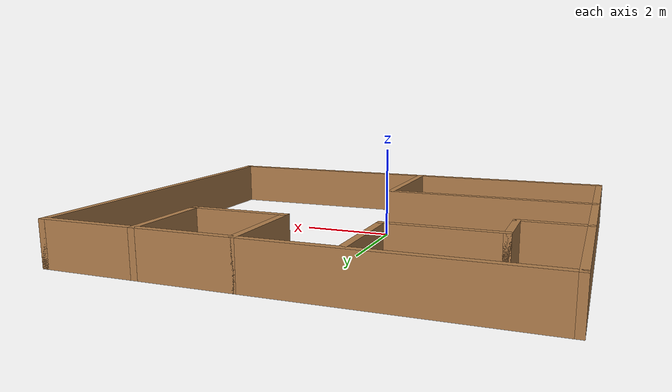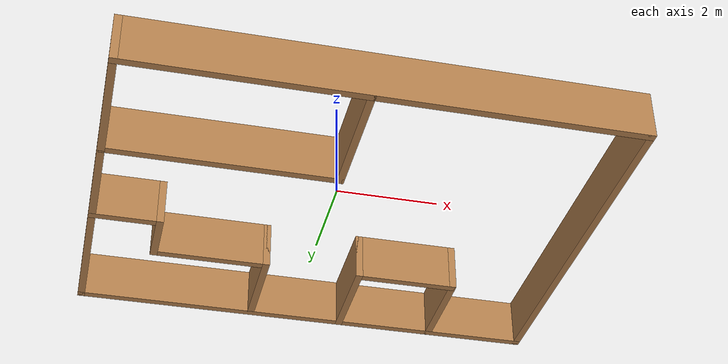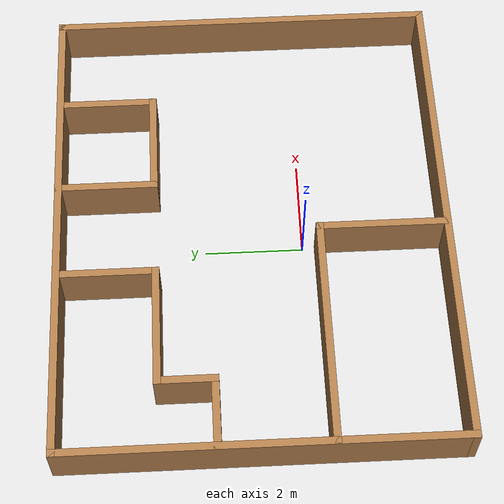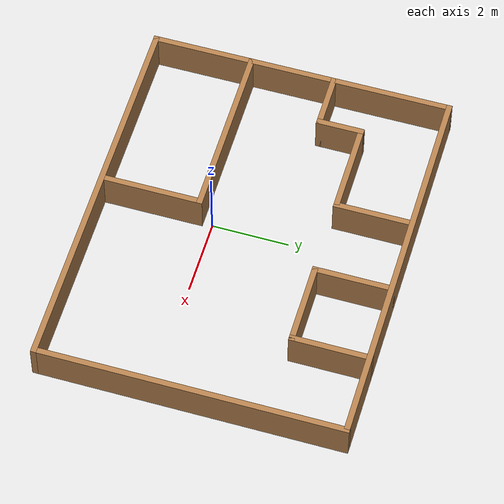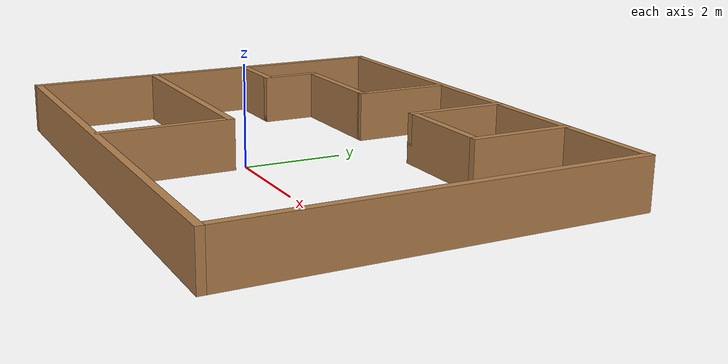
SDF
<?xml version='1.0'?>
<sdf version='1.6'>
  <model name='office3'>
    <pose frame=''>0.363 1.03103 0 0 -0 0</pose>
    <link name='Wall_10'>
      <collision name='Wall_10_Collision'>
        <geometry>
          <box>
            <size>10 0.15 1</size>
          </box>
        </geometry>
        <pose frame=''>0 0 0.5 0 -0 0</pose>
      </collision>
      <visual name='Wall_10_Visual'>
        <pose frame=''>0 0 0.5 0 -0 0</pose>
        <geometry>
          <box>
            <size>10 0.15 1</size>
          </box>
        </geometry>
        <material>
          <script>
            <uri>file://media/materials/scripts/gazebo.material</uri>
            <name>Gazebo/Wood</name>
          </script>
          <ambient>1 1 1 1</ambient>
        </material>
        <meta>
          <layer>0</layer>
        </meta>
      </visual>
      <pose frame=''>-0 -3.92503 0 0 -0 3.14159</pose>
    </link>
    <link name='Wall_11'>
      <collision name='Wall_11_Collision'>
        <geometry>
          <box>
            <size>8 0.15 1</size>
          </box>
        </geometry>
        <pose frame=''>0 0 0.5 0 -0 0</pose>
      </collision>
      <visual name='Wall_11_Visual'>
        <pose frame=''>0 0 0.5 0 -0 0</pose>
        <geometry>
          <box>
            <size>8 0.15 1</size>
          </box>
        </geometry>
        <material>
          <script>
            <uri>file://media/materials/scripts/gazebo.material</uri>
            <name>Gazebo/Wood</name>
          </script>
          <ambient>1 1 1 1</ambient>
        </material>
        <meta>
          <layer>0</layer>
        </meta>
      </visual>
      <pose frame=''>-4.925 -2.9e-05 0 0 -0 1.5708</pose>
    </link>
    <link name='Wall_13'>
      <collision name='Wall_13_Collision'>
        <geometry>
          <box>
            <size>1.5 0.15 1</size>
          </box>
        </geometry>
        <pose frame=''>0 0 0.5 0 -0 0</pose>
      </collision>
      <visual name='Wall_13_Visual'>
        <pose frame=''>0 0 0.5 0 -0 0</pose>
        <geometry>
          <box>
            <size>1.5 0.15 1</size>
          </box>
        </geometry>
        <material>
          <script>
            <uri>file://media/materials/scripts/gazebo.material</uri>
            <name>Gazebo/Wood</name>
          </script>
          <ambient>1 1 1 1</ambient>
        </material>
        <meta>
          <layer>0</layer>
        </meta>
      </visual>
      <pose frame=''>-4.25 0.863971 0 0 -0 0</pose>
    </link>
    <link name='Wall_14'>
      <collision name='Wall_14_Collision'>
        <geometry>
          <box>
            <size>1.25 0.15 1</size>
          </box>
        </geometry>
        <pose frame=''>0 0 0.5 0 -0 0</pose>
      </collision>
      <visual name='Wall_14_Visual'>
        <pose frame=''>0 0 0.5 0 -0 0</pose>
        <geometry>
          <box>
            <size>1.25 0.15 1</size>
          </box>
        </geometry>
        <material>
          <script>
            <uri>file://media/materials/scripts/gazebo.material</uri>
            <name>Gazebo/Wood</name>
          </script>
          <ambient>1 1 1 1</ambient>
        </material>
        <meta>
          <layer>0</layer>
        </meta>
      </visual>
      <pose frame=''>-3.575 1.41397 0 0 -0 1.5708</pose>
    </link>
    <link name='Wall_15'>
      <collision name='Wall_15_Collision'>
        <geometry>
          <box>
            <size>2.5 0.15 1</size>
          </box>
        </geometry>
        <pose frame=''>0 0 0.5 0 -0 0</pose>
      </collision>
      <visual name='Wall_15_Visual'>
        <pose frame=''>0 0 0.5 0 -0 0</pose>
        <geometry>
          <box>
            <size>2.5 0.15 1</size>
          </box>
        </geometry>
        <material>
          <script>
            <uri>file://media/materials/scripts/gazebo.material</uri>
            <name>Gazebo/Wood</name>
          </script>
          <ambient>1 1 1 1</ambient>
        </material>
        <meta>
          <layer>0</layer>
        </meta>
      </visual>
      <pose frame=''>-2.4 1.96397 0 0 -0 0</pose>
    </link>
    <link name='Wall_16'>
      <collision name='Wall_16_Collision'>
        <geometry>
          <box>
            <size>2 0.15 1</size>
          </box>
        </geometry>
        <pose frame=''>0 0 0.5 0 -0 0</pose>
      </collision>
      <visual name='Wall_16_Visual'>
        <pose frame=''>0 0 0.5 0 -0 0</pose>
        <geometry>
          <box>
            <size>2 0.15 1</size>
          </box>
        </geometry>
        <material>
          <script>
            <uri>file://media/materials/scripts/gazebo.material</uri>
            <name>Gazebo/Wood</name>
          </script>
          <ambient>1 1 1 1</ambient>
        </material>
        <meta>
          <layer>0</layer>
        </meta>
      </visual>
      <pose frame=''>-1.225 2.88897 0 0 -0 1.5708</pose>
    </link>
    <link name='Wall_18'>
      <collision name='Wall_18_Collision'>
        <geometry>
          <box>
            <size>2.106 0.15 1</size>
          </box>
        </geometry>
        <pose frame=''>0 0 0.5 0 -0 0</pose>
      </collision>
      <visual name='Wall_18_Visual'>
        <pose frame=''>0 0 0.5 0 -0 0</pose>
        <geometry>
          <box>
            <size>2.106 0.15 1</size>
          </box>
        </geometry>
        <material>
          <script>
            <uri>file://media/materials/scripts/gazebo.material</uri>
            <name>Gazebo/Wood</name>
          </script>
          <ambient>1 1 1 1</ambient>
        </material>
        <meta>
          <layer>0</layer>
        </meta>
      </visual>
      <pose frame=''>0.777 2.94697 0 0 -0 -1.5708</pose>
    </link>
    <link name='Wall_19'>
      <collision name='Wall_19_Collision'>
        <geometry>
          <box>
            <size>2.21 0.15 1</size>
          </box>
        </geometry>
        <pose frame=''>0 0 0.5 0 -0 0</pose>
      </collision>
      <visual name='Wall_19_Visual'>
        <pose frame=''>0 0 0.5 0 -0 0</pose>
        <geometry>
          <box>
            <size>2.21 0.15 1</size>
          </box>
        </geometry>
        <material>
          <script>
            <uri>file://media/materials/scripts/gazebo.material</uri>
            <name>Gazebo/Wood</name>
          </script>
          <ambient>1 1 1 1</ambient>
        </material>
        <meta>
          <layer>0</layer>
        </meta>
      </visual>
      <pose frame=''>1.807 1.96897 0 0 -0 0</pose>
    </link>
    <link name='Wall_20'>
      <collision name='Wall_20_Collision'>
        <geometry>
          <box>
            <size>2.10612 0.15 1</size>
          </box>
        </geometry>
        <pose frame=''>0 0 0.5 0 -0 0</pose>
      </collision>
      <visual name='Wall_20_Visual'>
        <pose frame=''>0 0 0.5 0 -0 0</pose>
        <geometry>
          <box>
            <size>2.10612 0.15 1</size>
          </box>
        </geometry>
        <material>
          <script>
            <uri>file://media/materials/scripts/gazebo.material</uri>
            <name>Gazebo/Wood</name>
          </script>
          <ambient>1 1 1 1</ambient>
        </material>
        <meta>
          <layer>0</layer>
        </meta>
      </visual>
      <pose frame=''>2.837 2.94697 0 0 -0 1.5708</pose>
    </link>
    <link name='Wall_22'>
      <collision name='Wall_22_Collision'>
        <geometry>
          <box>
            <size>4.692 0.15 1</size>
          </box>
        </geometry>
        <pose frame=''>0 0 0.5 0 -0 0</pose>
      </collision>
      <visual name='Wall_22_Visual'>
        <pose frame=''>0 0 0.5 0 -0 0</pose>
        <geometry>
          <box>
            <size>4.692 0.15 1</size>
          </box>
        </geometry>
        <material>
          <script>
            <uri>file://media/materials/scripts/gazebo.material</uri>
            <name>Gazebo/Wood</name>
          </script>
          <ambient>1 1 1 1</ambient>
        </material>
        <meta>
          <layer>0</layer>
        </meta>
      </visual>
      <pose frame=''>-2.634 -1.34503 0 0 -0 0</pose>
    </link>
    <link name='Wall_23'>
      <collision name='Wall_23_Collision'>
        <geometry>
          <box>
            <size>2.72664 0.15 1</size>
          </box>
        </geometry>
        <pose frame=''>0 0 0.5 0 -0 0</pose>
      </collision>
      <visual name='Wall_23_Visual'>
        <pose frame=''>0 0 0.5 0 -0 0</pose>
        <geometry>
          <box>
            <size>2.72664 0.15 1</size>
          </box>
        </geometry>
        <material>
          <script>
            <uri>file://media/materials/scripts/gazebo.material</uri>
            <name>Gazebo/Wood</name>
          </script>
          <ambient>1 1 1 1</ambient>
        </material>
        <meta>
          <layer>0</layer>
        </meta>
      </visual>
      <pose frame=''>-0.363 -2.63353 0 0 -0 -1.5708</pose>
    </link>
    <link name='Wall_8'>
      <collision name='Wall_8_Collision'>
        <geometry>
          <box>
            <size>10 0.15 1</size>
          </box>
        </geometry>
        <pose frame=''>0 0 0.5 0 -0 0</pose>
      </collision>
      <visual name='Wall_8_Visual'>
        <pose frame=''>0 0 0.5 0 -0 0</pose>
        <geometry>
          <box>
            <size>10 0.15 1</size>
          </box>
        </geometry>
        <material>
          <script>
            <uri>file://media/materials/scripts/gazebo.material</uri>
            <name>Gazebo/Wood</name>
          </script>
          <ambient>1 1 1 1</ambient>
        </material>
        <meta>
          <layer>0</layer>
        </meta>
      </visual>
      <pose frame=''>-0 3.92497 0 0 -0 0</pose>
    </link>
    <link name='Wall_9'>
      <collision name='Wall_9_Collision'>
        <geometry>
          <box>
            <size>8 0.15 1</size>
          </box>
        </geometry>
        <pose frame=''>0 0 0.5 0 -0 0</pose>
      </collision>
      <visual name='Wall_9_Visual'>
        <pose frame=''>0 0 0.5 0 -0 0</pose>
        <geometry>
          <box>
            <size>8 0.15 1</size>
          </box>
        </geometry>
        <material>
          <script>
            <uri>file://media/materials/scripts/gazebo.material</uri>
            <name>Gazebo/Wood</name>
          </script>
          <ambient>1 1 1 1</ambient>
        </material>
        <meta>
          <layer>0</layer>
        </meta>
      </visual>
      <pose frame=''>4.925 -2.9e-05 0 0 -0 -1.5708</pose>
    </link>
    <static>1</static>
  </model>
</sdf>
